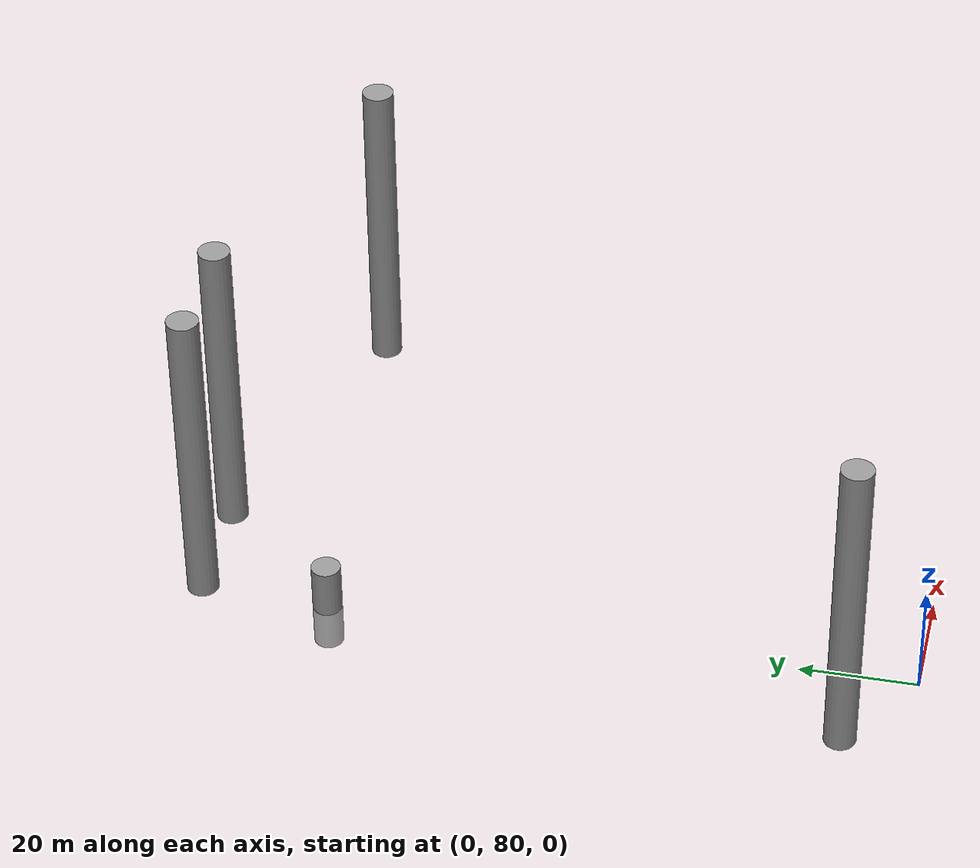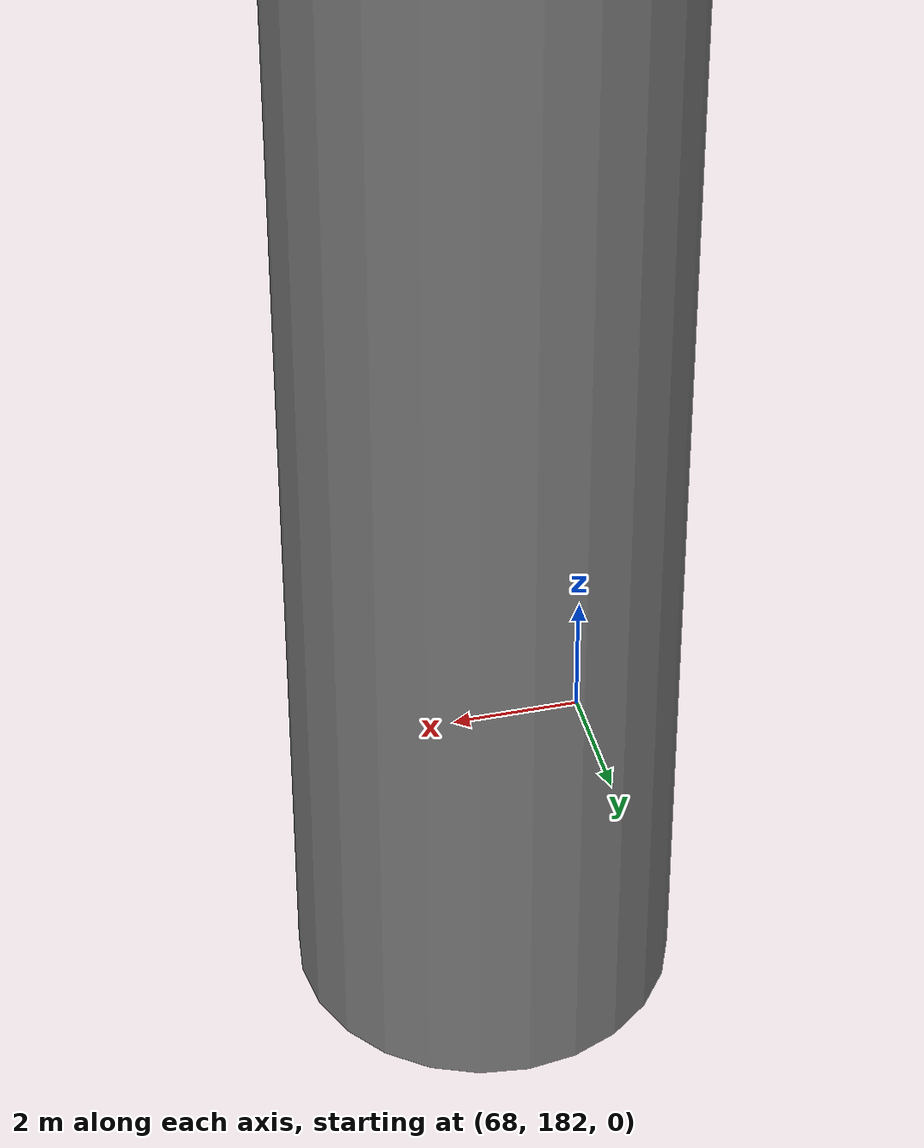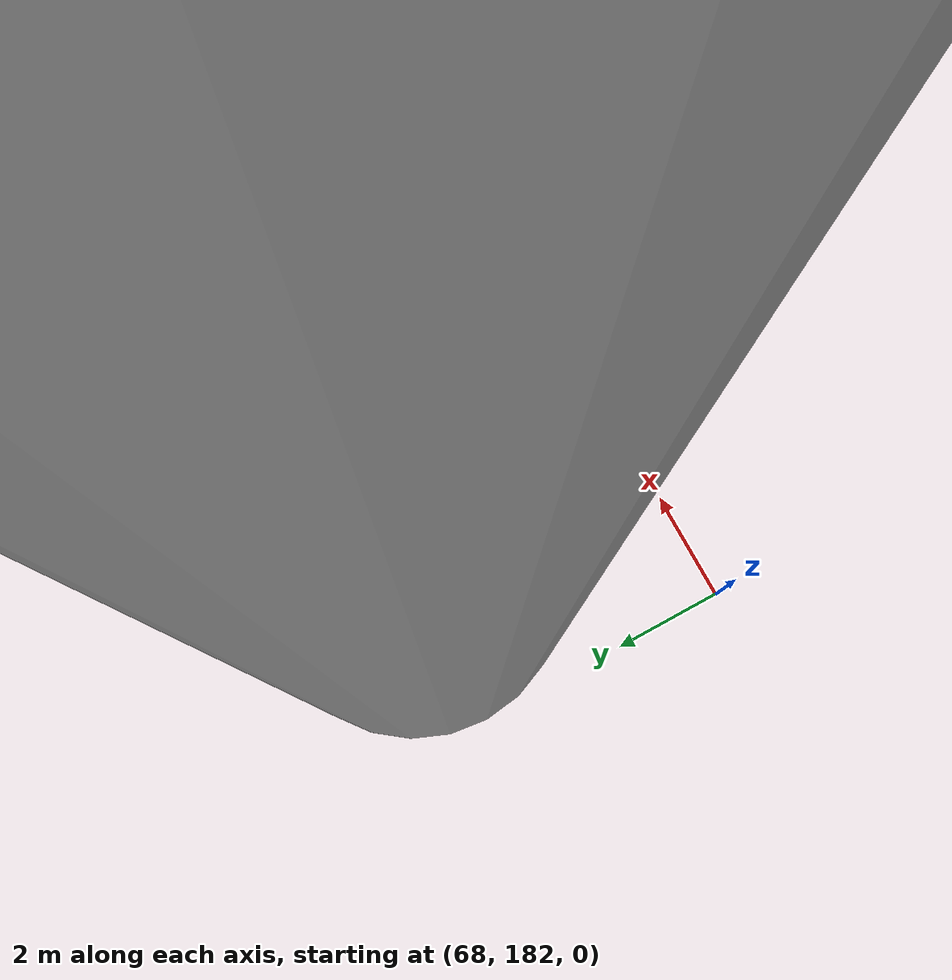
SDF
<sdf version="1.7">
 <world name="default">
  <scene>
   <shadows>0</shadows>
   <sky><time>10</time></sky>
   <ambient>0.4 0.4 0.4 1</ambient>
   <background>0.7 0.7 0.7 1</background>
  </scene>
  <physics type="ode">
   <ode>
    <solver>
     <type>quick</type>
     <iters>100</iters>
     <sor>1</sor>
     <use_dynamic_moi_rescaling>0</use_dynamic_moi_rescaling>
    </solver>
    <constraints>
     <cfm>0</cfm>
     <erp>0.9</erp>
     <contact_max_correcting_vel>0.1</contact_max_correcting_vel>
     <contact_surface_layer>0</contact_surface_layer>
    </constraints>
   </ode>
   <real_time_update_rate>0</real_time_update_rate>
   <max_step_size>0.0025</max_step_size>
   <real_time_factor>1</real_time_factor>
  </physics>
  <light name="sun" type="directional">
   <pose>0 0 10 0 -0 0</pose>
   <diffuse>0.8 0.8 0.8 1</diffuse>
   <specular>0.2 0.2 0.2 1</specular>
   <attenuation>
    <range>1000</range>
    <constant>0.9</constant>
    <linear>0.01</linear>
    <quadratic>0.001</quadratic>
   </attenuation>
   <direction>-0.5 0.1 -0.9</direction>
   <spot><inner_angle>0</inner_angle><outer_angle>0</outer_angle><falloff>0</falloff></spot>
  </light>
  <model name="ground_plane">
   <static>1</static>
   <link name="link">
    <collision name="collision">
     <geometry><plane><normal>0 0 1</normal><size>5000 5000</size></plane></geometry>
     <surface><friction><ode><mu>1</mu><mu2>1</mu2></ode></friction></surface>
    </collision>
    <visual name="runway">
     <pose>0 0 0.005 0 0 -1.5707</pose>
     <cast_shadows>0</cast_shadows>
     <geometry><plane><normal>0 0 1</normal><size>1829 45</size></plane></geometry>
     <geometry><mesh><uri>/home/dhruv/Desktop/SAA_dev/algorithm/terrain.dae</uri></mesh></geometry>
     <material>
      <script><uri>file://media/materials/scripts/gazebo.material</uri><name>Gazebo/Runway</name></script>
     </material>
    </visual>
    <visual name="grass">
     <pose>0 0 -0.1 0 -0 0</pose>
     <cast_shadows>0</cast_shadows>
     <geometry><plane><normal>0 0 1</normal><size>5000 5000</size></plane></geometry>
     <material>
      <script><uri>file://media/materials/scripts/gazebo.material</uri><name>Gazebo/Grass</name></script>
     </material>
    </visual>
   </link>
  </model>
  <gravity>0 0 -9.8</gravity>
  <magnetic_field>6e-06 2.3e-05 -4.2e-05</magnetic_field>
  <atmosphere type="adiabatic"/>
  <spherical_coordinates>
   <surface_model>EARTH_WGS84</surface_model>
   <latitude_deg>0</latitude_deg>
   <longitude_deg>0</longitude_deg>
   <elevation>0</elevation>
   <heading_deg>0</heading_deg>
  </spherical_coordinates>
  <model name="unit_cylinder">
   <pose>14.0301 70.5509 -446760 0 -0 0</pose>
   <link name="link">
    <inertial>
     <mass>1</mass>
     <inertia><ixx>0.145833</ixx><ixy>0</ixy><ixz>0</ixz><iyy>0.145833</iyy><iyz>0</iyz><izz>0.125</izz></inertia>
    </inertial>
    <collision name="collision">
     <geometry><cylinder><radius>0.000110905</radius><length>1.77499e-09</length></cylinder></geometry>
    </collision>
    <visual name="visual">
     <geometry><cylinder><radius>0.000110905</radius><length>1.77499e-09</length></cylinder></geometry>
     <material>
      <script><name>Gazebo/Grey</name><uri>file://media/materials/scripts/gazebo.material</uri></script>
     </material>
    </visual>
   </link>
  </model>
  <model name="unit_cylinder_clone">
   <pose>-15.0451 91.0705 28.1274 4e-06 1.4e-05 0.002987</pose>
   <link name="link">
    <inertial>
     <mass>1</mass>
     <inertia><ixx>0.145833</ixx><ixy>0</ixy><ixz>0</ixz><iyy>0.145833</iyy><iyz>0</iyz><izz>0.125</izz></inertia>
    </inertial>
    <collision name="collision">
     <geometry><cylinder><radius>2.69013</radius><length>56.2549</length></cylinder></geometry>
    </collision>
    <visual name="visual">
     <geometry><cylinder><radius>2.69013</radius><length>56.2549</length></cylinder></geometry>
     <material>
      <script><name>Gazebo/Grey</name><uri>file://media/materials/scripts/gazebo.material</uri></script>
     </material>
    </visual>
   </link>
  </model>
  <model name="unit_cylinder_clone_0">
   <pose>0.574672 201.81 28.1274 4e-06 1.4e-05 0.003213</pose>
   <link name="link">
    <inertial>
     <mass>1</mass>
     <inertia><ixx>0.145833</ixx><ixy>0</ixy><ixz>0</ixz><iyy>0.145833</iyy><iyz>0</iyz><izz>0.125</izz></inertia>
    </inertial>
    <collision name="collision">
     <geometry><cylinder><radius>2.69013</radius><length>56.2549</length></cylinder></geometry>
    </collision>
    <visual name="visual">
     <geometry><cylinder><radius>2.69013</radius><length>56.2549</length></cylinder></geometry>
     <material>
      <script><name>Gazebo/Grey</name><uri>file://media/materials/scripts/gazebo.material</uri></script>
     </material>
    </visual>
   </link>
  </model>
  <model name="unit_cylinder_clone_1">
   <pose>19.7851 201.946 28.1274 4e-06 1.4e-05 0.002977</pose>
   <link name="link">
    <inertial>
     <mass>1</mass>
     <inertia><ixx>0.145833</ixx><ixy>0</ixy><ixz>0</ixz><iyy>0.145833</iyy><iyz>0</iyz><izz>0.125</izz></inertia>
    </inertial>
    <collision name="collision">
     <geometry><cylinder><radius>2.69013</radius><length>56.2549</length></cylinder></geometry>
    </collision>
    <visual name="visual">
     <geometry><cylinder><radius>2.69013</radius><length>56.2549</length></cylinder></geometry>
     <material>
      <script><name>Gazebo/Grey</name><uri>file://media/materials/scripts/gazebo.material</uri></script>
     </material>
    </visual>
   </link>
  </model>
  <model name="unit_box">
   <pose>67.7505 182.004 0.002892 1.6e-05 0.000406 -0</pose>
   <link name="link">
    <inertial>
     <mass>1</mass>
     <inertia>
      <ixx>0.166667</ixx>
      <ixy>0</ixy>
      <ixz>0</ixz>
      <iyy>0.166667</iyy>
      <iyz>0</iyz>
      <izz>0.166667</izz>
     </inertia>
    </inertial>
    <collision name="collision">
     <geometry><box><size>0.0026443 0.000159802 0.00578323</size></box></geometry>
    </collision>
    <visual name="visual">
     <geometry><box><size>0.0026443 0.000159802 0.00578323</size></box></geometry>
     <material>
      <script><name>Gazebo/Grey</name><uri>file://media/materials/scripts/gazebo.material</uri></script>
     </material>
    </visual>
   </link>
  </model>
  <model name="unit_cylinder_clone_0_clone">
   <pose>70.7123 186.708 28.1274 4e-06 1.4e-05 0.003266</pose>
   <link name="link">
    <inertial>
     <mass>1</mass>
     <inertia><ixx>0.145833</ixx><ixy>0</ixy><ixz>0</ixz><iyy>0.145833</iyy><iyz>0</iyz><izz>0.125</izz></inertia>
    </inertial>
    <collision name="collision">
     <geometry><cylinder><radius>2.69013</radius><length>56.2549</length></cylinder></geometry>
    </collision>
    <visual name="visual">
     <geometry><cylinder><radius>2.69013</radius><length>56.2549</length></cylinder></geometry>
     <material>
      <script><name>Gazebo/Grey</name><uri>file://media/materials/scripts/gazebo.material</uri></script>
     </material>
    </visual>
   </link>
  </model>
  <model name="unit_cylinder_0">
   <pose>0.035657 179.99 0.5 0 -0 0</pose>
   <link name="link">
    <inertial>
     <mass>1</mass>
     <inertia><ixx>0.145833</ixx><ixy>0</ixy><ixz>0</ixz><iyy>0.145833</iyy><iyz>0</iyz><izz>0.125</izz></inertia>
    </inertial>
    <collision name="collision">
     <geometry><cylinder><radius>2.5</radius><length>16</length></cylinder></geometry>
    </collision>
    <visual name="visual">
     <geometry><cylinder><radius>2.5</radius><length>16</length></cylinder></geometry>
     <material>
      <script><name>Gazebo/Grey</name><uri>file://media/materials/scripts/gazebo.material</uri></script>
     </material>
    </visual>
   </link>
  </model>
 </world>
</sdf>
